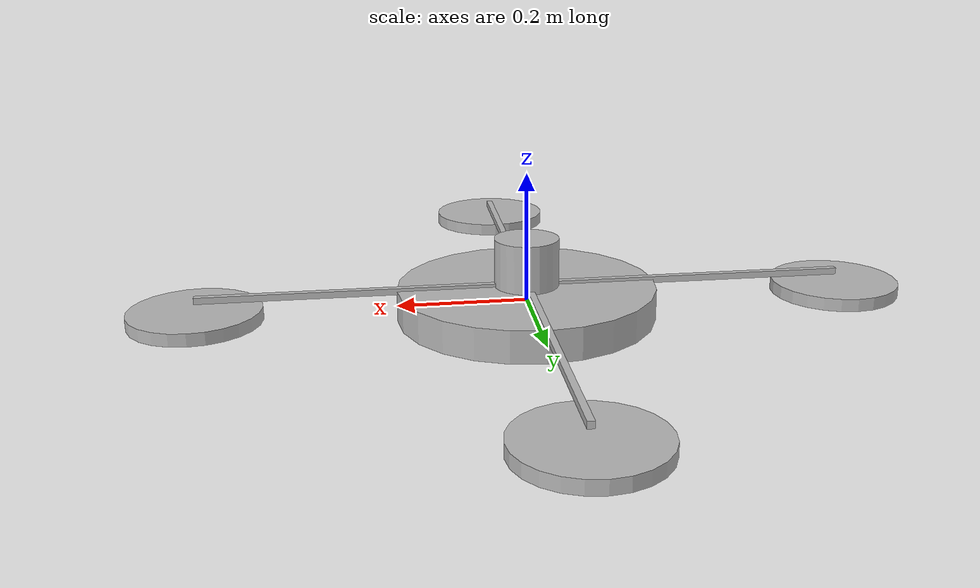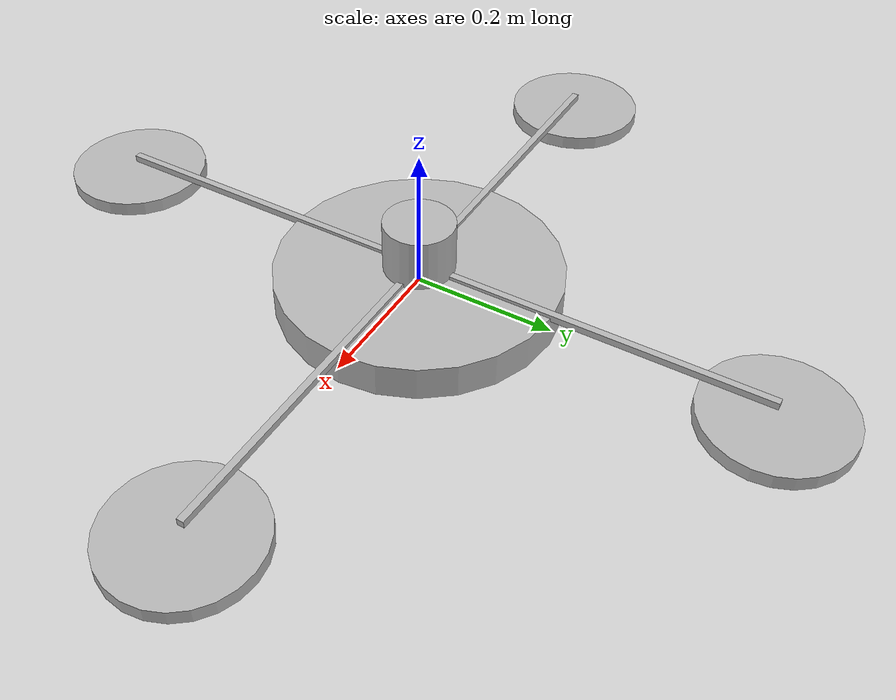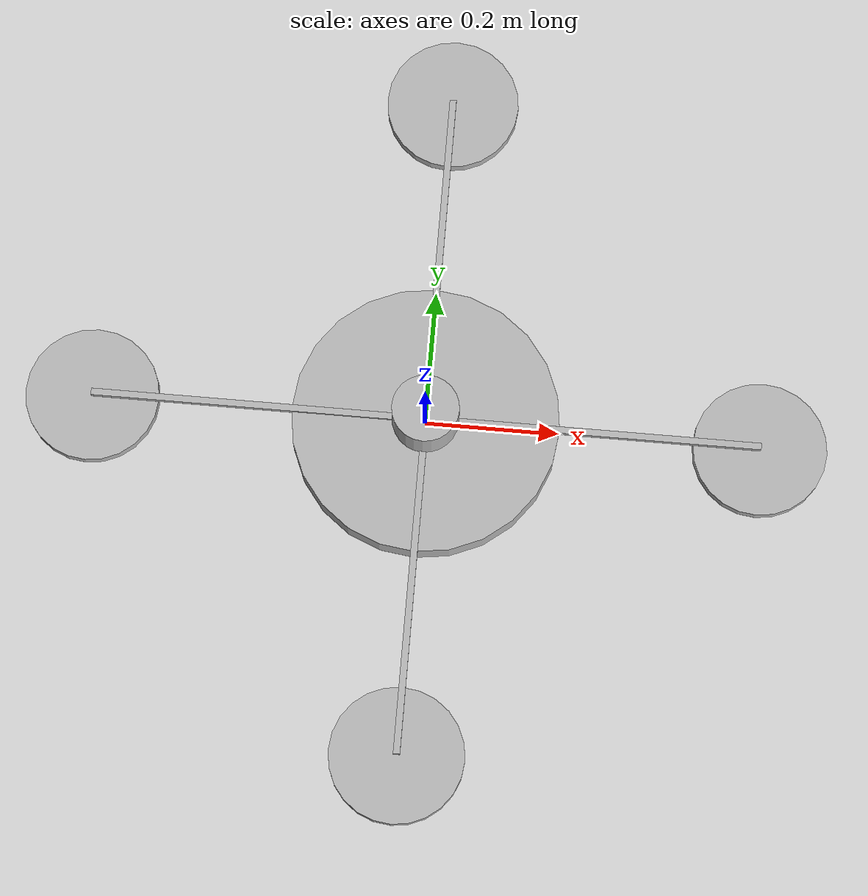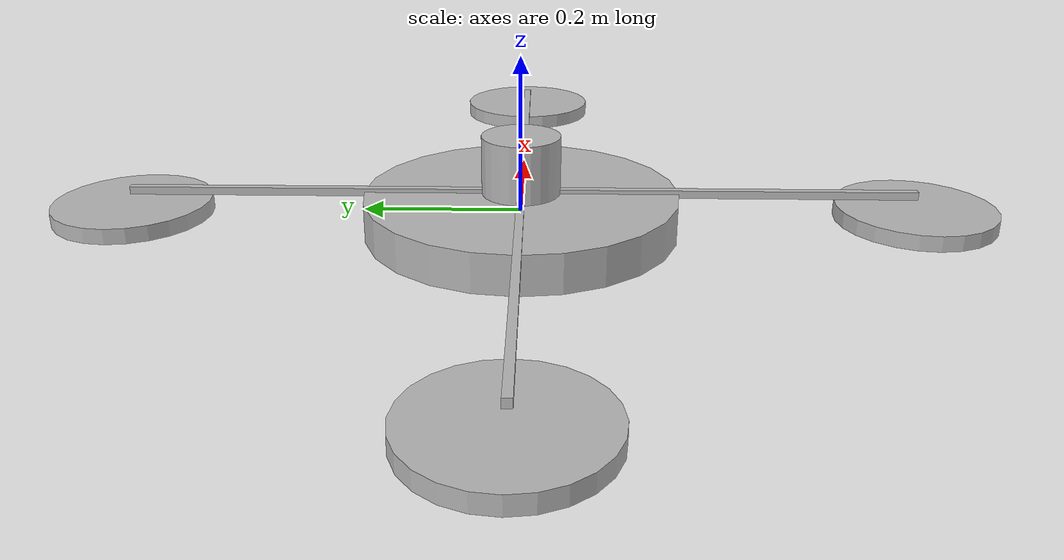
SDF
<?xml version='1.0'?>
<sdf version='1.4'>
	<model name="croc_flyer_v1">
		<static>false</static>
		<pose>0 0 0 0 0 0</pose>

		<!-- MAIN ROUND PLATFORM -->
    	<link name='center'>
    		<pose>0 0 0 0 0 0</pose>
			<collision name='collision'>
		    	<geometry>
		    		<cylinder>
		    			<radius>0.2</radius>
						<length>0.05</length>
		      		</cylinder>
		    	</geometry>
      		</collision>

			<visual name='visual'>
				<geometry>
					<cylinder>
						<radius>0.2</radius>
						<length>0.05</length>
					</cylinder>
				</geometry>
			</visual>
 		</link>

		<!-- ARM N-S -->
		<link name='arm_one'>
    		<pose>0 0 0.025 0 0 0</pose>
			<collision name='collision'>
		    	<geometry>
		    		<box>
		    			<size>1 0.01 0.01</size>
		      		</box>
		    	</geometry>
      		</collision>

			<visual name='visual'>
				<geometry>
		    		<box>
		    			<size>1 0.01 0.01</size>
		      		</box>
		    	</geometry>
			</visual>
 		</link>

		<!-- ARM E-W -->
		<link name='arm_two'>
    		<pose>0 0 0.025 0 0 0</pose>
			<collision name='collision'>
		    	<geometry>
		    		<box>
		    			<size>0.01 1 0.01</size>
		      		</box>
		    	</geometry>
      		</collision>

			<visual name='visual'>
				<geometry>
		    		<box>
		    			<size>0.01 1 0.01</size>
		      		</box>
		    	</geometry>
			</visual>
 		</link>

		<!-- PROPELLERS -->
		<link name='north_platform'>
    		<pose>-0.5 0 0 0 0 0</pose>
			<collision name='collision'>
		    	<geometry>
		    		<cylinder>
		    			<radius>0.1</radius>
						<length>0.02</length>
		      		</cylinder>
		    	</geometry>
      		</collision>

			<visual name='visual'>
				<geometry>
					<cylinder>
						<radius>0.1</radius>
						<length>0.02</length>
					</cylinder>
				</geometry>
			</visual>
 		</link>

		<link name='south_platform'>
    		<pose>0.5 0 0 0 0 0</pose>
			<collision name='collision'>
		    	<geometry>
		    		<cylinder>
		    			<radius>0.1</radius>
						<length>0.02</length>
		      		</cylinder>
		    	</geometry>
      		</collision>

			<visual name='visual'>
				<geometry>
					<cylinder>
						<radius>0.1</radius>
						<length>0.02</length>
					</cylinder>
				</geometry>
			</visual>
 		</link>

		<link name='east_platform'>
    		<pose>0 0.5 0 0 0 0</pose>
			<collision name='collision'>
		    	<geometry>
		    		<cylinder>
		    			<radius>0.1</radius>
						<length>0.02</length>
		      		</cylinder>
		    	</geometry>
      		</collision>

			<visual name='visual'>
				<geometry>
					<cylinder>
						<radius>0.1</radius>
						<length>0.02</length>
					</cylinder>
				</geometry>
			</visual>
 		</link>

		<link name='west_platform'>
    		<pose>0 -0.5 0 0 0 0</pose>
			<collision name='collision'>
		    	<geometry>
		    		<cylinder>
		    			<radius>0.1</radius>
						<length>0.02</length>
		      		</cylinder>
		    	</geometry>
      		</collision>

			<visual name='visual'>
				<geometry>
					<cylinder>
						<radius>0.1</radius>
						<length>0.02</length>
					</cylinder>
				</geometry>
			</visual>
 		</link>

		<!-- JOINTS -->

		<joint name="north_joint" type="revolute">
			<child>north_platform</child>
			<parent>arm_one</parent>
			<axis>
				<xyz>1 0 0</xyz>
				<limit>
					<upper>0</upper>
					<lower>0</lower>
				</limit>
			</axis>
		</joint>

		<joint name="south_joint" type="revolute">
			<child>south_platform</child>
			<parent>arm_one</parent>
			<axis>
				<xyz>1 0 0</xyz>
				<limit>
					<upper>0</upper>
					<lower>0</lower>
				</limit>
			</axis>
		</joint>

		<joint name="east_joint" type="revolute">
			<child>east_platform</child>
			<parent>arm_two</parent>
			<axis>
				<xyz>0 1 0</xyz>
				<limit>
					<upper>0</upper>
					<lower>0</lower>
				</limit>
			</axis>
		</joint>

		<joint name="west_joint" type="revolute">
			<child>west_platform</child>
			<parent>arm_two</parent>
			<axis>
				<xyz>0 1 0</xyz>
				<limit>
					<upper>0</upper>
					<lower>0</lower>
				</limit>
			</axis>
		</joint>

		<joint name="arm_joint" type="revolute">
			<child>arm_one</child>
			<parent>arm_two</parent>
			<axis>
				<xyz>0 0 1</xyz>
				<limit>
					<upper>0</upper>
					<lower>0</lower>
				</limit>
			</axis>
		</joint>

		<joint name="center_joint_one" type="revolute">
			<child>arm_one</child>
			<parent>center</parent>
			<axis>
				<xyz>0 0 1</xyz>
				<limit>
					<upper>0</upper>
					<lower>0</lower>
				</limit>
			</axis>
		</joint>

		<joint name="center_joint_two" type="revolute">
			<child>arm_two</child>
			<parent>center</parent>
			<axis>
				<xyz>0 0 1</xyz>
				<limit>
					<upper>0</upper>
					<lower>0</lower>
				</limit>
			</axis>
		</joint>

	<!-- HOKUYO -->
    <link name='lidar'>
		<pose>0 0 0.05 0 0 1.57</pose>
	  <inertial>
        <mass>0.001</mass>
      </inertial>
		<collision name='collision'>
	    	<geometry>
				<cylinder>
					<radius>0.05</radius>
					<length>0.1</length>
				</cylinder>
	    	</geometry>
  		</collision>

		<visual name='visual'>
			<geometry>
				<cylinder>
					<radius>0.05</radius>
					<length>0.1</length>
				</cylinder>
	    	</geometry>
		</visual>

		<sensor name="laser" type="ray">
			<pose>0 0 0 0 0 0</pose>
			<ray>
			  <scan>
				<horizontal>
				  <samples>1040</samples>
				  <resolution>1</resolution>
				  <min_angle>-2.26889</min_angle>
				  <max_angle>2.268899</max_angle>
				</horizontal>
			  </scan>
			  <range>
				<min>0.08</min>
				<max>15</max>
				<resolution>1</resolution>
			  </range>
			</ray>
			<always_on>1</always_on>
			<update_rate>20</update_rate>
			<visualize>true</visualize>
		</sensor>
	</link>

	<joint name="lidar_joint" type="revolute">
	  <child>lidar</child>
	  <parent>center</parent>
	  <axis>
		<xyz>0 0 1</xyz>
		<limit>
		  <upper>0</upper>
		  <lower>0</lower>
		</limit>
	  </axis>
	</joint>

   <plugin name="ros_flyer_plugin" filename="libros_flyer_plugin.so"/>
   <plugin name="ros_ultrasonic_plugin" filename="libros_ultrasonic_plugin.so"/>
   <plugin name="ros_lidar_plugin" filename="libros_lidar_plugin.so"/>

  </model>

</sdf>
